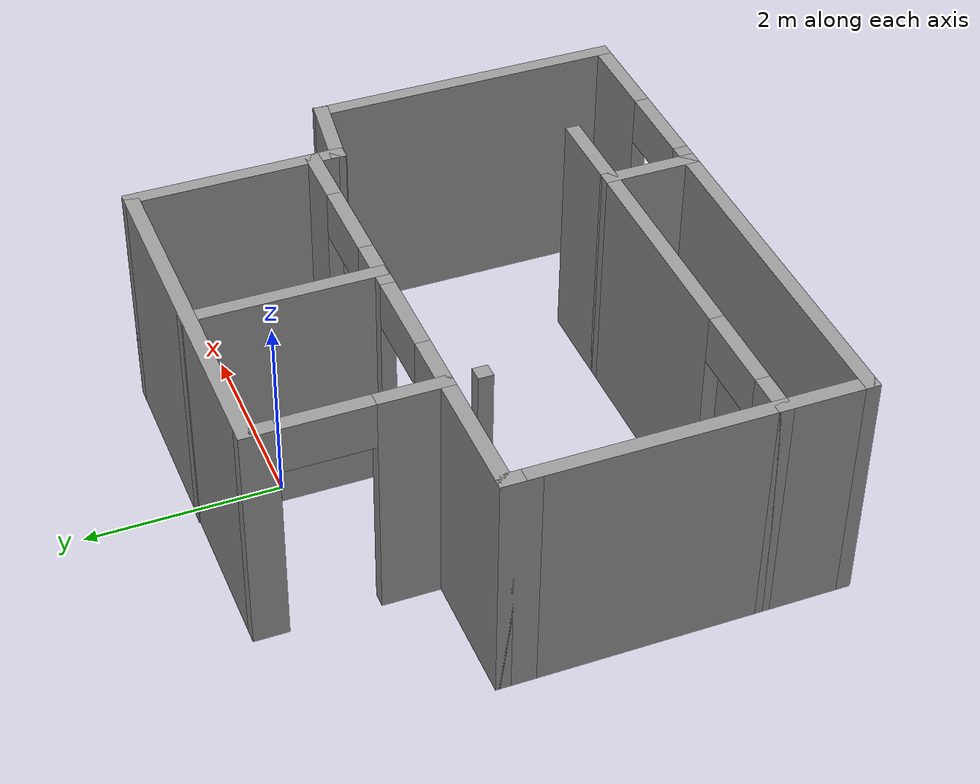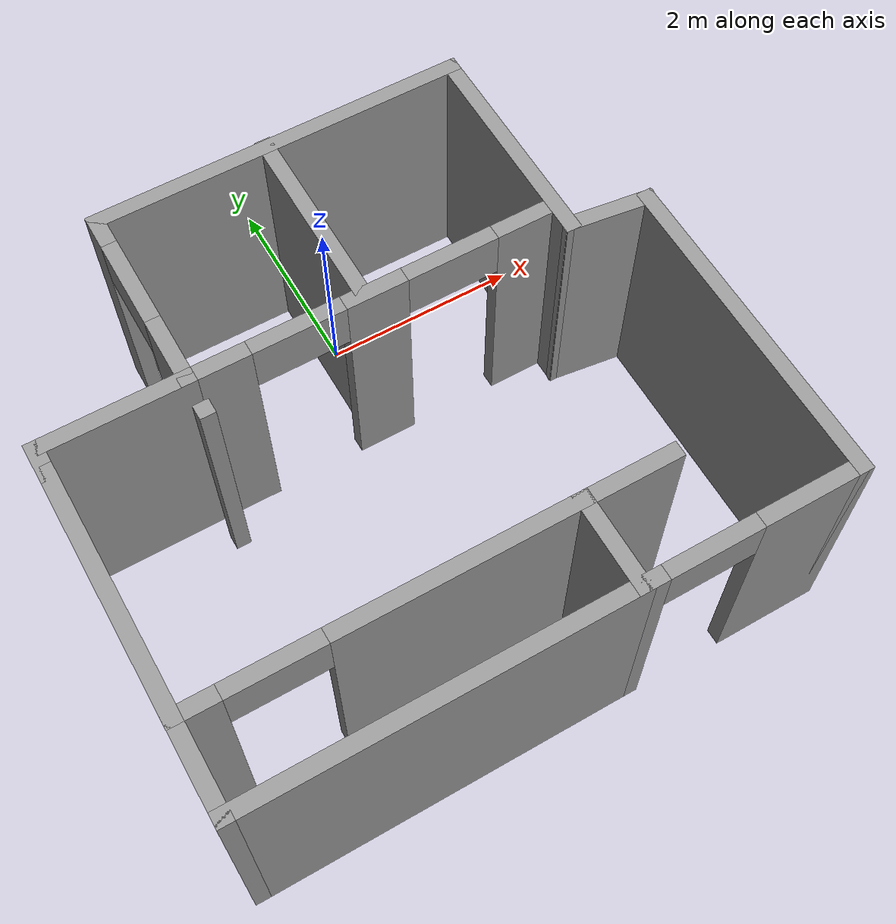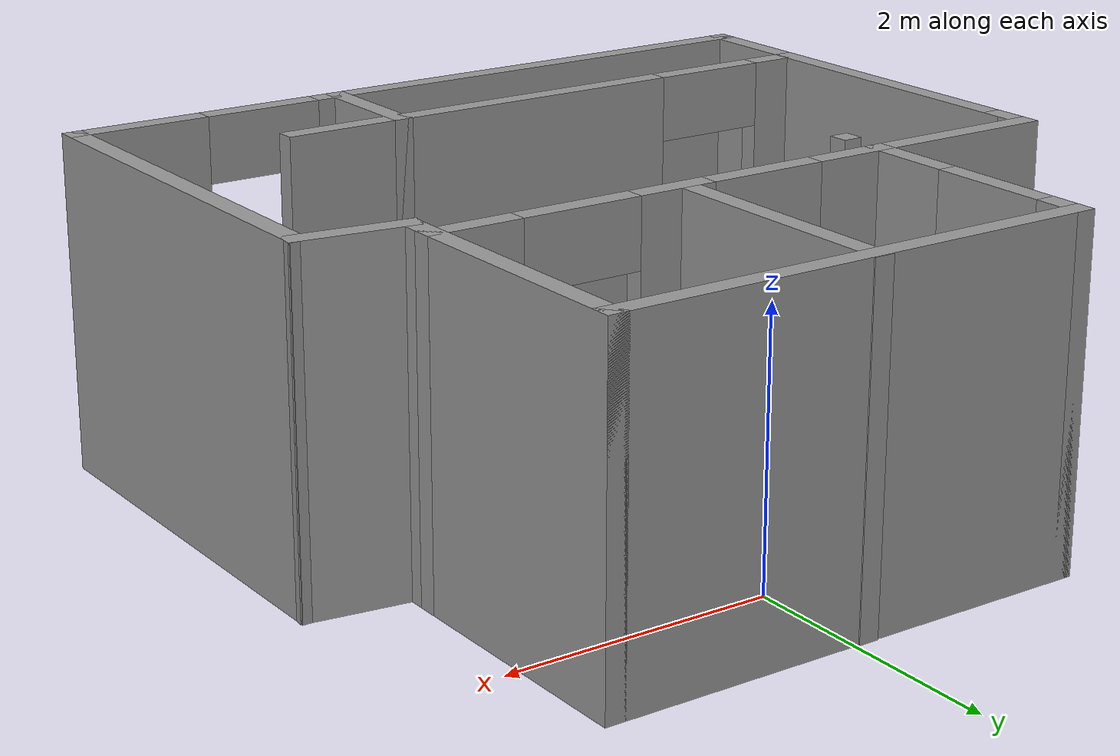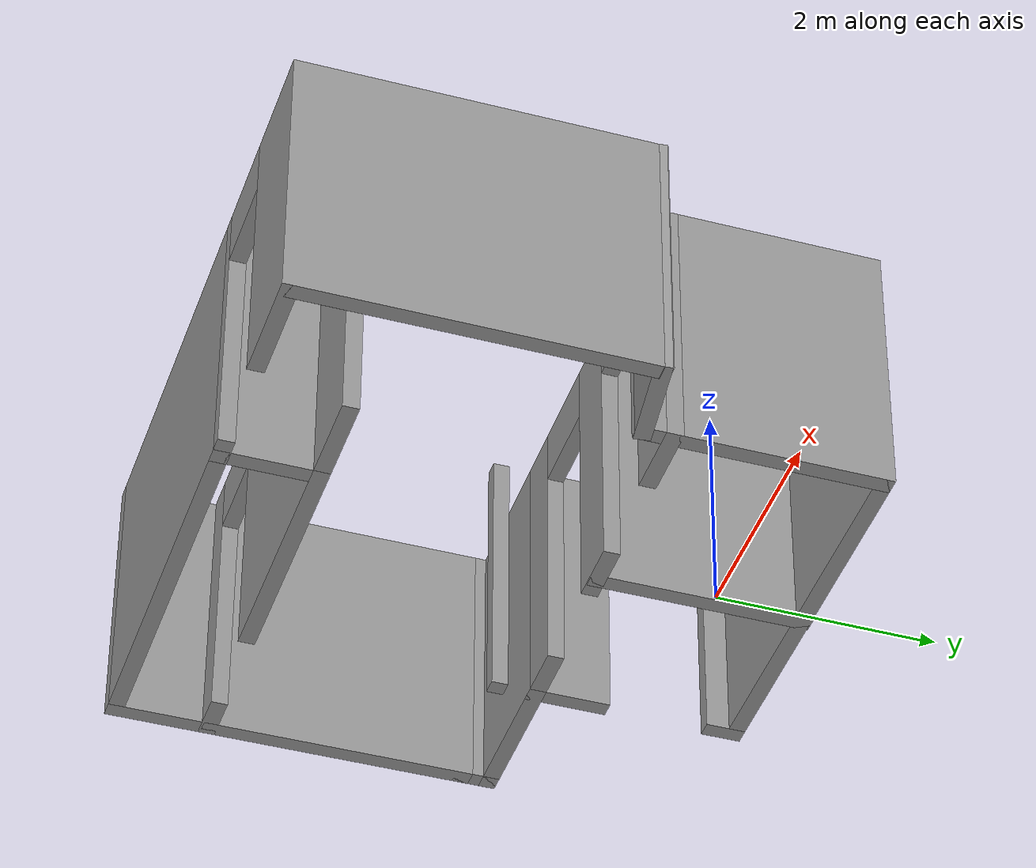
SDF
<?xml version='1.0'?>
<sdf version='1.6'>
  <model name='room'>
    <pose frame=''>-0.275373 -1.83504 0 0 -0 0</pose>
    <link name='Wall_0'>
      <collision name='Wall_0_Collision'>
        <geometry>
          <box>
            <size>2.5 0.15 2.5</size>
          </box>
        </geometry>
        <pose frame=''>0 0 1.25 0 -0 0</pose>
      </collision>
      <visual name='Wall_0_Visual'>
        <pose frame=''>0 0 1.25 0 -0 0</pose>
        <geometry>
          <box>
            <size>2.5 0.15 2.5</size>
          </box>
        </geometry>
        <material>
          <script>
            <uri>file://media/materials/scripts/gazebo.material</uri>
            <name>Gazebo/Grey</name>
          </script>
          <ambient>1 1 1 1</ambient>
        </material>
        <meta>
          <layer>0</layer>
        </meta>
      </visual>
      <pose frame=''>-2.85463 -0.629963 0 0 0 -1.5708</pose>
    </link>
    <link name='Wall_1'>
      <pose frame=''>-1.05463 -1.80496 0 0 -0 0</pose>
      <visual name='Wall_1_Visual_0'>
        <pose frame=''>-1.64399 0 1.25 0 -0 0</pose>
        <geometry>
          <box>
            <size>0.462028 0.15 2.5</size>
          </box>
        </geometry>
        <material>
          <script>
            <uri>file://media/materials/scripts/gazebo.material</uri>
            <name>Gazebo/Grey</name>
          </script>
          <ambient>1 1 1 1</ambient>
        </material>
        <meta>
          <layer>0</layer>
        </meta>
      </visual>
      <collision name='Wall_1_Collision_0'>
        <geometry>
          <box>
            <size>0.462028 0.15 2.5</size>
          </box>
        </geometry>
        <pose frame=''>-1.64399 0 1.25 0 -0 0</pose>
      </collision>
      <visual name='Wall_1_Visual_1'>
        <pose frame=''>0.681014 0 1.25 0 -0 0</pose>
        <geometry>
          <box>
            <size>2.38797 0.15 2.5</size>
          </box>
        </geometry>
        <material>
          <script>
            <uri>file://media/materials/scripts/gazebo.material</uri>
            <name>Gazebo/Grey</name>
          </script>
          <ambient>1 1 1 1</ambient>
        </material>
        <meta>
          <layer>0</layer>
        </meta>
      </visual>
      <collision name='Wall_1_Collision_1'>
        <geometry>
          <box>
            <size>2.38797 0.15 2.5</size>
          </box>
        </geometry>
        <pose frame=''>0.681014 0 1.25 0 -0 0</pose>
      </collision>
      <visual name='Wall_1_Visual_2'>
        <pose frame=''>-0.962972 0 2.25 0 -0 0</pose>
        <geometry>
          <box>
            <size>0.9 0.15 0.5</size>
          </box>
        </geometry>
        <material>
          <script>
            <uri>file://media/materials/scripts/gazebo.material</uri>
            <name>Gazebo/Grey</name>
          </script>
          <ambient>1 1 1 1</ambient>
        </material>
        <meta>
          <layer>0</layer>
        </meta>
      </visual>
      <collision name='Wall_1_Collision_2'>
        <geometry>
          <box>
            <size>0.9 0.15 0.5</size>
          </box>
        </geometry>
        <pose frame=''>-0.962972 0 2.25 0 -0 0</pose>
      </collision>
    </link>
    <link name='Wall_18'>
      <collision name='Wall_18_Collision'>
        <geometry>
          <box>
            <size>3.75 0.15 2.5</size>
          </box>
        </geometry>
        <pose frame=''>0 0 1.25 0 -0 0</pose>
      </collision>
      <visual name='Wall_18_Visual'>
        <pose frame=''>0 0 1.25 0 -0 0</pose>
        <geometry>
          <box>
            <size>3.75 0.15 2.5</size>
          </box>
        </geometry>
        <material>
          <script>
            <uri>file://media/materials/scripts/gazebo.material</uri>
            <name>Gazebo/Grey</name>
          </script>
          <ambient>1 1 1 1</ambient>
        </material>
        <meta>
          <layer>0</layer>
        </meta>
      </visual>
      <pose frame=''>-1.05463 -2.65496 0 0 -0 3.14159</pose>
    </link>
    <link name='Wall_19'>
      <collision name='Wall_19_Collision'>
        <geometry>
          <box>
            <size>1 0.15 2.5</size>
          </box>
        </geometry>
        <pose frame=''>0 0 1.25 0 -0 0</pose>
      </collision>
      <visual name='Wall_19_Visual'>
        <pose frame=''>0 0 1.25 0 -0 0</pose>
        <geometry>
          <box>
            <size>1 0.15 2.5</size>
          </box>
        </geometry>
        <material>
          <script>
            <uri>file://media/materials/scripts/gazebo.material</uri>
            <name>Gazebo/Grey</name>
          </script>
          <ambient>1 1 1 1</ambient>
        </material>
        <meta>
          <layer>0</layer>
        </meta>
      </visual>
      <pose frame=''>-2.85463 -2.22996 0 0 -0 1.5708</pose>
    </link>
    <link name='Wall_2'>
      <collision name='Wall_2_Collision'>
        <geometry>
          <box>
            <size>1 0.15 2.5</size>
          </box>
        </geometry>
        <pose frame=''>0 0 1.25 0 -0 0</pose>
      </collision>
      <visual name='Wall_2_Visual'>
        <pose frame=''>0 0 1.25 0 -0 0</pose>
        <geometry>
          <box>
            <size>1 0.15 2.5</size>
          </box>
        </geometry>
        <material>
          <script>
            <uri>file://media/materials/scripts/gazebo.material</uri>
            <name>Gazebo/Grey</name>
          </script>
          <ambient>1 1 1 1</ambient>
        </material>
        <meta>
          <layer>0</layer>
        </meta>
      </visual>
      <pose frame=''>0.745373 -2.22996 0 0 0 -1.5708</pose>
    </link>
    <link name='Wall_21'>
      <pose frame=''>-1.50463 1.72004 0 0 -0 1.5708</pose>
      <visual name='Wall_21_Visual_0'>
        <pose frame=''>-0.629368 0 1.25 0 -0 0</pose>
        <geometry>
          <box>
            <size>0.741263 0.15 2.5</size>
          </box>
        </geometry>
        <material>
          <script>
            <uri>file://media/materials/scripts/gazebo.material</uri>
            <name>Gazebo/Grey</name>
          </script>
          <ambient>1 1 1 1</ambient>
        </material>
        <meta>
          <layer>0</layer>
        </meta>
      </visual>
      <collision name='Wall_21_Collision_0'>
        <geometry>
          <box>
            <size>0.741263 0.15 2.5</size>
          </box>
        </geometry>
        <pose frame=''>-0.629368 0 1.25 0 -0 0</pose>
      </collision>
      <visual name='Wall_21_Visual_1'>
        <pose frame=''>0.820632 0 1.25 0 -0 0</pose>
        <geometry>
          <box>
            <size>0.358737 0.15 2.5</size>
          </box>
        </geometry>
        <material>
          <script>
            <uri>file://media/materials/scripts/gazebo.material</uri>
            <name>Gazebo/Grey</name>
          </script>
          <ambient>1 1 1 1</ambient>
        </material>
        <meta>
          <layer>0</layer>
        </meta>
      </visual>
      <collision name='Wall_21_Collision_1'>
        <geometry>
          <box>
            <size>0.358737 0.15 2.5</size>
          </box>
        </geometry>
        <pose frame=''>0.820632 0 1.25 0 -0 0</pose>
      </collision>
      <visual name='Wall_21_Visual_2'>
        <pose frame=''>0.191263 0 2.25 0 -0 0</pose>
        <geometry>
          <box>
            <size>0.9 0.15 0.5</size>
          </box>
        </geometry>
        <material>
          <script>
            <uri>file://media/materials/scripts/gazebo.material</uri>
            <name>Gazebo/Grey</name>
          </script>
          <ambient>1 1 1 1</ambient>
        </material>
        <meta>
          <layer>0</layer>
        </meta>
      </visual>
      <collision name='Wall_21_Collision_2'>
        <geometry>
          <box>
            <size>0.9 0.15 0.5</size>
          </box>
        </geometry>
        <pose frame=''>0.191263 0 2.25 0 -0 0</pose>
      </collision>
    </link>
    <link name='Wall_24'>
      <collision name='Wall_24_Collision'>
        <geometry>
          <box>
            <size>3.75 0.15 2.5</size>
          </box>
        </geometry>
        <pose frame=''>0 0 1.25 0 -0 0</pose>
      </collision>
      <visual name='Wall_24_Visual'>
        <pose frame=''>0 0 1.25 0 -0 0</pose>
        <geometry>
          <box>
            <size>3.75 0.15 2.5</size>
          </box>
        </geometry>
        <material>
          <script>
            <uri>file://media/materials/scripts/gazebo.material</uri>
            <name>Gazebo/Grey</name>
          </script>
          <ambient>1 1 1 1</ambient>
        </material>
        <meta>
          <layer>0</layer>
        </meta>
      </visual>
      <pose frame=''>0.295373 2.64504 0 0 -0 0</pose>
    </link>
    <link name='Wall_26'>
      <collision name='Wall_26_Collision'>
        <geometry>
          <box>
            <size>2.25 0.15 2.5</size>
          </box>
        </geometry>
        <pose frame=''>0 0 1.25 0 -0 0</pose>
      </collision>
      <visual name='Wall_26_Visual'>
        <pose frame=''>0 0 1.25 0 -0 0</pose>
        <geometry>
          <box>
            <size>2.25 0.15 2.5</size>
          </box>
        </geometry>
        <material>
          <script>
            <uri>file://media/materials/scripts/gazebo.material</uri>
            <name>Gazebo/Grey</name>
          </script>
          <ambient>1 1 1 1</ambient>
        </material>
        <meta>
          <layer>0</layer>
        </meta>
      </visual>
      <pose frame=''>2.09537 1.59504 0 0 0 -1.5708</pose>
    </link>
    <link name='Wall_28'>
      <collision name='Wall_28_Collision'>
        <geometry>
          <box>
            <size>0.906637 0.15 2.5</size>
          </box>
        </geometry>
        <pose frame=''>0 0 1.25 0 -0 0</pose>
      </collision>
      <visual name='Wall_28_Visual'>
        <pose frame=''>0 0 1.25 0 -0 0</pose>
        <geometry>
          <box>
            <size>0.906637 0.15 2.5</size>
          </box>
        </geometry>
        <material>
          <script>
            <uri>file://media/materials/scripts/gazebo.material</uri>
            <name>Gazebo/Grey</name>
          </script>
          <ambient>1 1 1 1</ambient>
        </material>
        <meta>
          <layer>0</layer>
        </meta>
      </visual>
      <pose frame=''>2.47037 0.495037 0 0 0 -0.132552</pose>
    </link>
    <link name='Wall_3'>
      <pose frame=''>1.79537 -2.65496 0 0 -0 0</pose>
      <visual name='Wall_3_Visual_0'>
        <pose frame=''>-0.981757 0 1.25 0 -0 0</pose>
        <geometry>
          <box>
            <size>0.286486 0.15 2.5</size>
          </box>
        </geometry>
        <material>
          <script>
            <uri>file://media/materials/scripts/gazebo.material</uri>
            <name>Gazebo/Grey</name>
          </script>
          <ambient>1 1 1 1</ambient>
        </material>
        <meta>
          <layer>0</layer>
        </meta>
      </visual>
      <collision name='Wall_3_Collision_0'>
        <geometry>
          <box>
            <size>0.286486 0.15 2.5</size>
          </box>
        </geometry>
        <pose frame=''>-0.981757 0 1.25 0 -0 0</pose>
      </collision>
      <visual name='Wall_3_Visual_1'>
        <pose frame=''>0.593243 0 1.25 0 -0 0</pose>
        <geometry>
          <box>
            <size>1.06351 0.15 2.5</size>
          </box>
        </geometry>
        <material>
          <script>
            <uri>file://media/materials/scripts/gazebo.material</uri>
            <name>Gazebo/Grey</name>
          </script>
          <ambient>1 1 1 1</ambient>
        </material>
        <meta>
          <layer>0</layer>
        </meta>
      </visual>
      <collision name='Wall_3_Collision_1'>
        <geometry>
          <box>
            <size>1.06351 0.15 2.5</size>
          </box>
        </geometry>
        <pose frame=''>0.593243 0 1.25 0 -0 0</pose>
      </collision>
      <visual name='Wall_3_Visual_2'>
        <pose frame=''>-0.388514 0 2.25 0 -0 0</pose>
        <geometry>
          <box>
            <size>0.9 0.15 0.5</size>
          </box>
        </geometry>
        <material>
          <script>
            <uri>file://media/materials/scripts/gazebo.material</uri>
            <name>Gazebo/Grey</name>
          </script>
          <ambient>1 1 1 1</ambient>
        </material>
        <meta>
          <layer>0</layer>
        </meta>
      </visual>
      <collision name='Wall_3_Collision_2'>
        <geometry>
          <box>
            <size>0.9 0.15 0.5</size>
          </box>
        </geometry>
        <pose frame=''>-0.388514 0 2.25 0 -0 0</pose>
      </collision>
    </link>
    <link name='Wall_30'>
      <pose frame=''>0.295373 0.795037 0 0 -0 0</pose>
      <visual name='Wall_30_Visual_0'>
        <pose frame=''>-1.54946 0 1.25 0 -0 0</pose>
        <geometry>
          <box>
            <size>0.651071 0.15 2.5</size>
          </box>
        </geometry>
        <material>
          <script>
            <uri>file://media/materials/scripts/gazebo.material</uri>
            <name>Gazebo/Grey</name>
          </script>
          <ambient>1 1 1 1</ambient>
        </material>
        <meta>
          <layer>0</layer>
        </meta>
      </visual>
      <collision name='Wall_30_Collision_0'>
        <geometry>
          <box>
            <size>0.651071 0.15 2.5</size>
          </box>
        </geometry>
        <pose frame=''>-1.54946 0 1.25 0 -0 0</pose>
      </collision>
      <visual name='Wall_30_Visual_1'>
        <pose frame=''>-0.024938 0 1.25 0 -0 0</pose>
        <geometry>
          <box>
            <size>0.597982 0.15 2.5</size>
          </box>
        </geometry>
        <material>
          <script>
            <uri>file://media/materials/scripts/gazebo.material</uri>
            <name>Gazebo/Grey</name>
          </script>
          <ambient>1 1 1 1</ambient>
        </material>
        <meta>
          <layer>0</layer>
        </meta>
      </visual>
      <collision name='Wall_30_Collision_1'>
        <geometry>
          <box>
            <size>0.597982 0.15 2.5</size>
          </box>
        </geometry>
        <pose frame=''>-0.024938 0 1.25 0 -0 0</pose>
      </collision>
      <visual name='Wall_30_Visual_2'>
        <pose frame=''>1.52453 0 1.25 0 -0 0</pose>
        <geometry>
          <box>
            <size>0.700947 0.15 2.5</size>
          </box>
        </geometry>
        <material>
          <script>
            <uri>file://media/materials/scripts/gazebo.material</uri>
            <name>Gazebo/Grey</name>
          </script>
          <ambient>1 1 1 1</ambient>
        </material>
        <meta>
          <layer>0</layer>
        </meta>
      </visual>
      <collision name='Wall_30_Collision_2'>
        <geometry>
          <box>
            <size>0.700947 0.15 2.5</size>
          </box>
        </geometry>
        <pose frame=''>1.52453 0 1.25 0 -0 0</pose>
      </collision>
      <visual name='Wall_30_Visual_3'>
        <pose frame=''>-0.773929 0 2.25 0 -0 0</pose>
        <geometry>
          <box>
            <size>0.9 0.15 0.5</size>
          </box>
        </geometry>
        <material>
          <script>
            <uri>file://media/materials/scripts/gazebo.material</uri>
            <name>Gazebo/Grey</name>
          </script>
          <ambient>1 1 1 1</ambient>
        </material>
        <meta>
          <layer>0</layer>
        </meta>
      </visual>
      <collision name='Wall_30_Collision_3'>
        <geometry>
          <box>
            <size>0.9 0.15 0.5</size>
          </box>
        </geometry>
        <pose frame=''>-0.773929 0 2.25 0 -0 0</pose>
      </collision>
      <visual name='Wall_30_Visual_4'>
        <pose frame=''>0.724053 0 2.25 0 -0 0</pose>
        <geometry>
          <box>
            <size>0.9 0.15 0.5</size>
          </box>
        </geometry>
        <material>
          <script>
            <uri>file://media/materials/scripts/gazebo.material</uri>
            <name>Gazebo/Grey</name>
          </script>
          <ambient>1 1 1 1</ambient>
        </material>
        <meta>
          <layer>0</layer>
        </meta>
      </visual>
      <collision name='Wall_30_Collision_4'>
        <geometry>
          <box>
            <size>0.9 0.15 0.5</size>
          </box>
        </geometry>
        <pose frame=''>0.724053 0 2.25 0 -0 0</pose>
      </collision>
    </link>
    <link name='Wall_33'>
      <collision name='Wall_33_Collision'>
        <geometry>
          <box>
            <size>2 0.15 2.5</size>
          </box>
        </geometry>
        <pose frame=''>0 0 1.25 0 -0 0</pose>
      </collision>
      <visual name='Wall_33_Visual'>
        <pose frame=''>0 0 1.25 0 -0 0</pose>
        <geometry>
          <box>
            <size>2 0.15 2.5</size>
          </box>
        </geometry>
        <material>
          <script>
            <uri>file://media/materials/scripts/gazebo.material</uri>
            <name>Gazebo/Grey</name>
          </script>
          <ambient>1 1 1 1</ambient>
        </material>
        <meta>
          <layer>0</layer>
        </meta>
      </visual>
      <pose frame=''>0.170605 1.72996 0 0 0 -1.5708</pose>
    </link>
    <link name='Wall_36'>
      <collision name='Wall_36_Collision'>
        <geometry>
          <box>
            <size>1 0.15 2.5</size>
          </box>
        </geometry>
        <pose frame=''>0 0 1.25 0 -0 0</pose>
      </collision>
      <visual name='Wall_36_Visual'>
        <pose frame=''>0 0 1.25 0 -0 0</pose>
        <geometry>
          <box>
            <size>1 0.15 2.5</size>
          </box>
        </geometry>
        <material>
          <script>
            <uri>file://media/materials/scripts/gazebo.material</uri>
            <name>Gazebo/Grey</name>
          </script>
          <ambient>1 1 1 1</ambient>
        </material>
        <meta>
          <layer>0</layer>
        </meta>
      </visual>
      <pose frame=''>1.17037 -1.80496 0 0 -0 0</pose>
    </link>
    <link name='Wall_4'>
      <collision name='Wall_4_Collision'>
        <geometry>
          <box>
            <size>3.25 0.15 2.5</size>
          </box>
        </geometry>
        <pose frame=''>0 0 1.25 0 -0 0</pose>
      </collision>
      <visual name='Wall_4_Visual'>
        <pose frame=''>0 0 1.25 0 -0 0</pose>
        <geometry>
          <box>
            <size>3.25 0.15 2.5</size>
          </box>
        </geometry>
        <material>
          <script>
            <uri>file://media/materials/scripts/gazebo.material</uri>
            <name>Gazebo/Grey</name>
          </script>
          <ambient>1 1 1 1</ambient>
        </material>
        <meta>
          <layer>0</layer>
        </meta>
      </visual>
      <pose frame=''>2.84537 -1.10496 0 0 -0 1.5708</pose>
    </link>
    <link name='Wall_6'>
      <collision name='Wall_6_Collision'>
        <geometry>
          <box>
            <size>0.15 0.15 2.5</size>
          </box>
        </geometry>
        <pose frame=''>0 0 1.25 0 -0 0</pose>
      </collision>
      <visual name='Wall_6_Visual'>
        <pose frame=''>0 0 1.25 0 -0 0</pose>
        <geometry>
          <box>
            <size>0.15 0.15 2.5</size>
          </box>
        </geometry>
        <material>
          <script>
            <uri>file://media/materials/scripts/gazebo.material</uri>
            <name>Gazebo/Grey</name>
          </script>
          <ambient>1 1 1 1</ambient>
        </material>
        <meta>
          <layer>0</layer>
        </meta>
      </visual>
      <pose frame=''>-1.50463 0.445037 0 0 -0 0</pose>
    </link>
    <link name='Wall_8'>
      <collision name='Wall_8_Collision'>
        <geometry>
          <box>
            <size>1.5 0.15 2.5</size>
          </box>
        </geometry>
        <pose frame=''>0 0 1.25 0 -0 0</pose>
      </collision>
      <visual name='Wall_8_Visual'>
        <pose frame=''>0 0 1.25 0 -0 0</pose>
        <geometry>
          <box>
            <size>1.5 0.15 2.5</size>
          </box>
        </geometry>
        <material>
          <script>
            <uri>file://media/materials/scripts/gazebo.material</uri>
            <name>Gazebo/Grey</name>
          </script>
          <ambient>1 1 1 1</ambient>
        </material>
        <meta>
          <layer>0</layer>
        </meta>
      </visual>
      <pose frame=''>-2.17963 0.795037 0 0 -0 3.14159</pose>
    </link>
    <link name='Wall_9'>
      <collision name='Wall_9_Collision'>
        <geometry>
          <box>
            <size>0.4 0.15 2.5</size>
          </box>
        </geometry>
        <pose frame=''>0 0 1.25 0 -0 0</pose>
      </collision>
      <visual name='Wall_9_Visual'>
        <pose frame=''>0 0 1.25 0 -0 0</pose>
        <geometry>
          <box>
            <size>0.4 0.15 2.5</size>
          </box>
        </geometry>
        <material>
          <script>
            <uri>file://media/materials/scripts/gazebo.material</uri>
            <name>Gazebo/Grey</name>
          </script>
          <ambient>1 1 1 1</ambient>
        </material>
        <meta>
          <layer>0</layer>
        </meta>
      </visual>
      <pose frame=''>-2.85463 0.670037 0 0 0 -1.5708</pose>
    </link>
    <static>1</static>
  </model>
</sdf>
